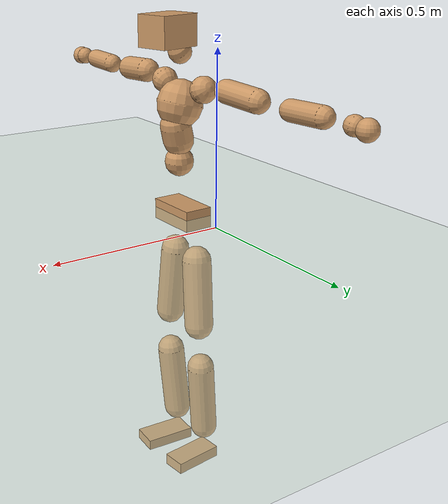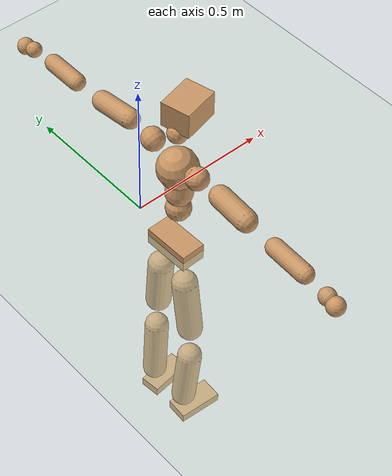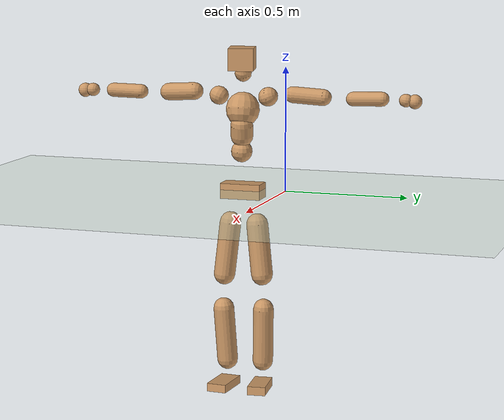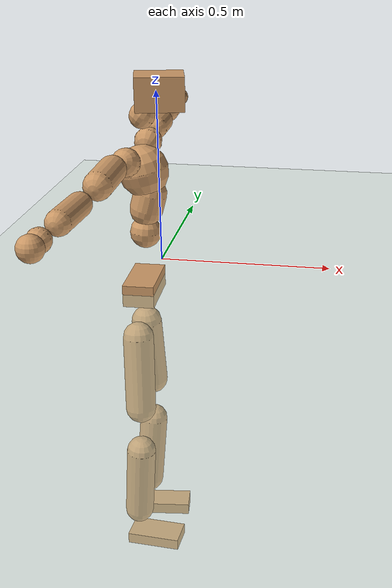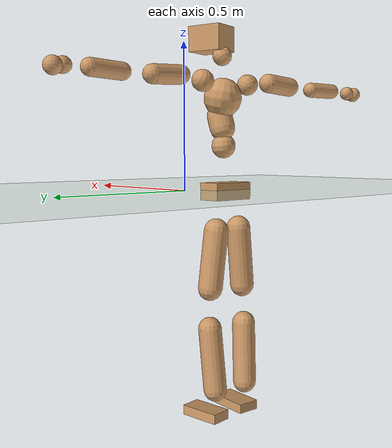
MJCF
<mujoco model="humanoid">
  <compiler coordinate="local" angle="radian"/>
  <default>
    <joint damping="0.0" armature="0.01" stiffness="0.0" limited="true"/>
    <geom conaffinity="1" condim="3" contype="7" margin="0.001" rgba="0.8 0.6 .4 1"/>
  </default>
  <asset>
    <texture type="skybox" builtin="gradient" rgb1=".4 .5 .6" rgb2="0 0 0" width="100" height="100"/>
    <texture builtin="flat" height="1278" mark="cross" markrgb="1 1 1" name="texgeom" random="0.01" rgb1="0.8 0.6 0.4" rgb2="0.8 0.6 0.4" type="cube" width="127"/>
    <texture builtin="checker" height="100" name="texplane" rgb1="0 0 0" rgb2="0.8 0.8 0.8" type="2d" width="100"/>
    <material name="MatPlane" reflectance="0.5" shininess="1" specular="1" texrepeat="60 60" texture="texplane"/>
    <material name="geom" texture="texgeom" texuniform="true"/>
  </asset>
  <worldbody>
    <light cutoff="100" diffuse="1 1 1" dir="-0 0 -1.3" directional="true" exponent="1" pos="0 0 1.3" specular=".1 .1 .1"/>
    <geom conaffinity="1" condim="3" name="floor" pos="0 0 0" rgba="0.8 0.9 0.8 1" size="100 100 .2" type="plane" material="MatPlane"/>
    <body name="Pelvis" pos="-0.0021 -0.1832 0.0037">
      <freejoint name="Pelvis"/>
      <geom type="box" contype="1" conaffinity="1" density="5359.374996" pos="-0.0064 -0.0002 -0.0107" size="0.0432 0.0829 0.0309" quat="0.9999 0.0000 0.0000 0.0121" name="Pelvis"/>
      <body name="L_Hip" pos="-0.0215 0.0494 -0.0761">
        <joint name="L_Hip_x" type="hinge" pos="0 0 0" axis="1 0 0" stiffness="1600" damping="160" armature="0.02" range="-180.0000 180.0000"/>
        <joint name="L_Hip_y" type="hinge" pos="0 0 0" axis="0 1 0" stiffness="1600" damping="160" armature="0.02" range="-180.0000 180.0000"/>
        <joint name="L_Hip_z" type="hinge" pos="0 0 0" axis="0 0 1" stiffness="1600" damping="160" armature="0.02" range="-180.0000 180.0000"/>
        <geom type="capsule" contype="1" conaffinity="1" density="2040.816327" size="0.0439" fromto="0.0024 0.0080 -0.0735 0.0092 0.0306 -0.2801" name="L_Hip"/>
        <body name="L_Knee" pos="0.0116 0.0387 -0.3536">
          <joint name="L_Knee_x" type="hinge" pos="0 0 0" axis="1 0 0" stiffness="1600" damping="160" armature="0.02" range="-180.0000 180.0000"/>
          <joint name="L_Knee_y" type="hinge" pos="0 0 0" axis="0 1 0" stiffness="1600" damping="160" armature="0.02" range="-180.0000 180.0000"/>
          <joint name="L_Knee_z" type="hinge" pos="0 0 0" axis="0 0 1" stiffness="1600" damping="160" armature="0.02" range="-180.0000 180.0000"/>
          <geom type="capsule" contype="1" conaffinity="1" density="1234.567901" size="0.0416" fromto="-0.0060 -0.0026 -0.0713 -0.0247 -0.0108 -0.2950" name="L_Knee"/>
          <body name="L_Ankle" pos="-0.0307 -0.0134 -0.3663">
            <joint name="L_Ankle_x" type="hinge" pos="0 0 0" axis="1 0 0" stiffness="1600" damping="160" armature="0.02" range="-180.0000 180.0000"/>
            <joint name="L_Ankle_y" type="hinge" pos="0 0 0" axis="0 1 0" stiffness="1600" damping="160" armature="0.02" range="-180.0000 180.0000"/>
            <joint name="L_Ankle_z" type="hinge" pos="0 0 0" axis="0 0 1" stiffness="1600" damping="160" armature="0.02" range="-180.0000 180.0000"/>
            <geom type="box" contype="1" conaffinity="1" density="1000.00001" pos="0.0549 0.0061 -0.0250" size="0.0769 0.0366 0.0177" quat="0.9985 0.0000 0.0000 0.0553" name="L_Ankle"/>
            <body name="L_Toe" pos="0.1098 0.0122 -0.05">
              <joint name="L_Toe_x" type="hinge" pos="0 0 0" axis="1 0 0" stiffness="1000" damping="100" armature="0.02" range="-180.0000 180.0000"/>
              <joint name="L_Toe_y" type="hinge" pos="0 0 0" axis="0 1 0" stiffness="1000" damping="100" armature="0.02" range="-180.0000 180.0000"/>
              <joint name="L_Toe_z" type="hinge" pos="0 0 0" axis="0 0 1" stiffness="1000" damping="100" armature="0.02" range="-180.0000 180.0000"/>
              <geom type="box" contype="1" conaffinity="1" density="9123574.545769" pos="0.0000 0.0000 0.0259" size="0.0008 0.0019 0.0009" quat="0.9980 0.0000 0.0000 0.0631" name="L_Toe"/>
            </body>
          </body>
        </body>
      </body>
      <body name="R_Hip" pos="-0.0174 -0.0479 -0.0737">
        <joint name="R_Hip_x" type="hinge" pos="0 0 0" axis="1 0 0" stiffness="1600" damping="160" armature="0.02" range="-180.0000 180.0000"/>
        <joint name="R_Hip_y" type="hinge" pos="0 0 0" axis="0 1 0" stiffness="1600" damping="160" armature="0.02" range="-180.0000 180.0000"/>
        <joint name="R_Hip_z" type="hinge" pos="0 0 0" axis="0 0 1" stiffness="1600" damping="160" armature="0.02" range="-180.0000 180.0000"/>
        <geom type="capsule" contype="1" conaffinity="1" density="2040.816327" size="0.0434" fromto="0.0016 -0.0083 -0.0729 0.0065 -0.0328 -0.2900" name="R_Hip"/>
        <body name="R_Knee" pos="0.0082 -0.0411 -0.363">
          <joint name="R_Knee_x" type="hinge" pos="0 0 0" axis="1 0 0" stiffness="1600" damping="160" armature="0.02" range="-180.0000 180.0000"/>
          <joint name="R_Knee_y" type="hinge" pos="0 0 0" axis="0 1 0" stiffness="1600" damping="160" armature="0.02" range="-180.0000 180.0000"/>
          <joint name="R_Knee_z" type="hinge" pos="0 0 0" axis="0 0 1" stiffness="1600" damping="160" armature="0.02" range="-180.0000 180.0000"/>
          <geom type="capsule" contype="1" conaffinity="1" density="1234.567901" size="0.0423" fromto="-0.0054 0.0033 -0.0720 -0.0220 0.0136 -0.2925" name="R_Knee"/>
          <body name="R_Ankle" pos="-0.0274 0.0169 -0.3645">
            <joint name="R_Ankle_x" type="hinge" pos="0 0 0" axis="1 0 0" stiffness="1600" damping="160" armature="0.02" range="-180.0000 180.0000"/>
            <joint name="R_Ankle_y" type="hinge" pos="0 0 0" axis="0 1 0" stiffness="1600" damping="160" armature="0.02" range="-180.0000 180.0000"/>
            <joint name="R_Ankle_z" type="hinge" pos="0 0 0" axis="0 0 1" stiffness="1600" damping="160" armature="0.02" range="-180.0000 180.0000"/>
            <geom type="box" contype="1" conaffinity="1" density="999.999974" pos="0.0558 -0.0037 -0.0209" size="0.0785 0.0408 0.0168" quat="0.9994 0.0000 0.0000 -0.0333" name="R_Ankle"/>
            <body name="R_Toe" pos="0.1117 -0.0075 -0.0417">
              <joint name="R_Toe_x" type="hinge" pos="0 0 0" axis="1 0 0" stiffness="1000" damping="100" armature="0.02" range="-180.0000 180.0000"/>
              <joint name="R_Toe_y" type="hinge" pos="0 0 0" axis="0 1 0" stiffness="1000" damping="100" armature="0.02" range="-180.0000 180.0000"/>
              <joint name="R_Toe_z" type="hinge" pos="0 0 0" axis="0 0 1" stiffness="1000" damping="100" armature="0.02" range="-180.0000 180.0000"/>
              <geom type="box" contype="1" conaffinity="1" density="9136280.498939" pos="0.0000 0.0000 0.0228" size="0.0008 0.002 0.0009" quat="0.9997 0.0000 0.0000 -0.0240" name="R_Toe"/>
            </body>
          </body>
        </body>
      </body>
      <body name="Torso" pos="0.0003 -0.0024 0.0858">
        <joint name="Torso_x" type="hinge" pos="0 0 0" axis="1 0 0" stiffness="2000" damping="200" armature="0.02" range="-180.0000 180.0000"/>
        <joint name="Torso_y" type="hinge" pos="0 0 0" axis="0 1 0" stiffness="2000" damping="200" armature="0.02" range="-180.0000 180.0000"/>
        <joint name="Torso_z" type="hinge" pos="0 0 0" axis="0 0 1" stiffness="2000" damping="200" armature="0.02" range="-180.0000 180.0000"/>
        <geom type="capsule" contype="1" conaffinity="1" density="2040.816327" size="0.0427" fromto="0.0037 0.0018 0.0633 0.0038 0.0019 0.0653" name="Torso"/>
        <body name="Spine" pos="0.0075 0.0037 0.1286">
          <joint name="Spine_x" type="hinge" pos="0 0 0" axis="1 0 0" stiffness="2000" damping="200" armature="0.02" range="-180.0000 180.0000"/>
          <joint name="Spine_y" type="hinge" pos="0 0 0" axis="0 1 0" stiffness="2000" damping="200" armature="0.02" range="-180.0000 180.0000"/>
          <joint name="Spine_z" type="hinge" pos="0 0 0" axis="0 0 1" stiffness="2000" damping="200" armature="0.02" range="-180.0000 180.0000"/>
          <geom type="capsule" contype="1" conaffinity="1" density="2040.816327" size="0.0453" fromto="0.0115 0.0033 0.0436 -0.0001 -0.0000 -0.0003" name="Spine"/>
          <body name="Chest" pos="0.0114 0.0033 0.0433">
            <joint name="Chest_x" type="hinge" pos="0 0 0" axis="1 0 0" stiffness="2000" damping="200" armature="0.02" range="-180.0000 180.0000"/>
            <joint name="Chest_y" type="hinge" pos="0 0 0" axis="0 1 0" stiffness="2000" damping="200" armature="0.02" range="-180.0000 180.0000"/>
            <joint name="Chest_z" type="hinge" pos="0 0 0" axis="0 0 1" stiffness="2000" damping="200" armature="0.02" range="-180.0000 180.0000"/>
            <geom type="capsule" contype="1" conaffinity="1" density="2040.816327" size="0.0673" fromto="-0.0162 -0.0010 0.0653 -0.0149 -0.0010 0.0600" name="Chest"/>
            <body name="Neck" pos="-0.0369 -0.0033 0.1788">
              <joint name="Neck_x" type="hinge" pos="0 0 0" axis="1 0 0" stiffness="1000" damping="100" armature="0.02" range="-180.0000 180.0000"/>
              <joint name="Neck_y" type="hinge" pos="0 0 0" axis="0 1 0" stiffness="1000" damping="100" armature="0.02" range="-180.0000 180.0000"/>
              <joint name="Neck_z" type="hinge" pos="0 0 0" axis="0 0 1" stiffness="1000" damping="100" armature="0.02" range="-180.0000 180.0000"/>
              <geom type="capsule" contype="1" conaffinity="1" density="1000" size="0.0338" fromto="0.0216 0.0044 0.0293 0.0228 0.0046 0.0309" name="Neck"/>
              <body name="Head" pos="0.0444 0.009 0.0602">
                <joint name="Head_x" type="hinge" pos="0 0 0" axis="1 0 0" stiffness="1000" damping="100" armature="0.02" range="-180.0000 180.0000"/>
                <joint name="Head_y" type="hinge" pos="0 0 0" axis="0 1 0" stiffness="1000" damping="100" armature="0.02" range="-180.0000 180.0000"/>
                <joint name="Head_z" type="hinge" pos="0 0 0" axis="0 0 1" stiffness="1000" damping="100" armature="0.02" range="-180.0000 180.0000"/>
                <geom type="box" contype="1" conaffinity="1" density="2249.99997" pos="0.0232 0.0055 0.0311" size="0.0642 0.0504 0.0444" quat="0.9932 0.0000 0.0000 0.1164" name="Head"/>
              </body>
            </body>
            <body name="L_Thorax" pos="-0.0266 0.0628 0.1002">
              <joint name="L_Thorax_x" type="hinge" pos="0 0 0" axis="1 0 0" stiffness="1000" damping="100" armature="0.02" range="-180.0000 180.0000"/>
              <joint name="L_Thorax_y" type="hinge" pos="0 0 0" axis="0 1 0" stiffness="1000" damping="100" armature="0.02" range="-180.0000 180.0000"/>
              <joint name="L_Thorax_z" type="hinge" pos="0 0 0" axis="0 0 1" stiffness="1000" damping="100" armature="0.02" range="-180.0000 180.0000"/>
              <geom type="capsule" contype="1" conaffinity="1" density="1000" size="0.0382" fromto="0.0008 0.0385 0.0151 0.0009 0.0404 0.0158" name="L_Thorax"/>
              <body name="L_Shoulder" pos="0.0017 0.0789 0.0308">
                <joint name="L_Shoulder_x" type="hinge" pos="0 0 0" axis="1 0 0" stiffness="1000" damping="100" armature="0.02" range="-720.0000 720.0000"/>
                <joint name="L_Shoulder_y" type="hinge" pos="0 0 0" axis="0 1 0" stiffness="1000" damping="100" armature="0.02" range="-720.0000 720.0000"/>
                <joint name="L_Shoulder_z" type="hinge" pos="0 0 0" axis="0 0 1" stiffness="1000" damping="100" armature="0.02" range="-720.0000 720.0000"/>
                <geom type="capsule" contype="1" conaffinity="1" density="1000" size="0.0328" fromto="-0.0045 0.0626 -0.0039 -0.0132 0.1855 -0.0114" name="L_Shoulder"/>
                <body name="L_Elbow" pos="-0.0177 0.248 -0.0153">
                  <joint name="L_Elbow_x" type="hinge" pos="0 0 0" axis="1 0 0" stiffness="1000" damping="100" armature="0.02" range="-720.0000 720.0000"/>
                  <joint name="L_Elbow_y" type="hinge" pos="0 0 0" axis="0 1 0" stiffness="1000" damping="100" armature="0.02" range="-720.0000 720.0000"/>
                  <joint name="L_Elbow_z" type="hinge" pos="0 0 0" axis="0 0 1" stiffness="1000" damping="100" armature="0.02" range="-720.0000 720.0000"/>
                  <geom type="capsule" contype="1" conaffinity="1" density="1000" size="0.0285" fromto="-0.0011 0.0585 0.0018 -0.0032 0.1740 0.0053" name="L_Elbow"/>
                  <body name="L_Wrist" pos="-0.0042 0.2325 0.0071">
                    <joint name="L_Wrist_x" type="hinge" pos="0 0 0" axis="1 0 0" stiffness="600" damping="60" armature="0.02" range="-180.0000 180.0000"/>
                    <joint name="L_Wrist_y" type="hinge" pos="0 0 0" axis="0 1 0" stiffness="600" damping="60" armature="0.02" range="-180.0000 180.0000"/>
                    <joint name="L_Wrist_z" type="hinge" pos="0 0 0" axis="0 0 1" stiffness="600" damping="60" armature="0.02" range="-180.0000 180.0000"/>
                    <geom type="capsule" contype="1" conaffinity="1" density="1000" size="0.0257" fromto="-0.0059 0.0343 -0.0043 -0.0062 0.0363 -0.0046" name="L_Wrist"/>
                    <body name="L_Hand" pos="-0.0121 0.0706 -0.0089">
                      <joint name="L_Hand_x" type="hinge" pos="0 0 0" axis="1 0 0" stiffness="600" damping="60" armature="0.02" range="-180.0000 180.0000"/>
                      <joint name="L_Hand_y" type="hinge" pos="0 0 0" axis="0 1 0" stiffness="600" damping="60" armature="0.02" range="-180.0000 180.0000"/>
                      <joint name="L_Hand_z" type="hinge" pos="0 0 0" axis="0 0 1" stiffness="600" damping="60" armature="0.02" range="-180.0000 180.0000"/>
                      <geom type="sphere" contype="1" conaffinity="1" density="1000" size="0.0282" pos="0.0000 0.0000 0.0000" name="L_Hand"/>
                    </body>
                  </body>
                </body>
              </body>
            </body>
            <body name="R_Thorax" pos="-0.0301 -0.0655 0.097">
              <joint name="R_Thorax_x" type="hinge" pos="0 0 0" axis="1 0 0" stiffness="1000" damping="100" armature="0.02" range="-180.0000 180.0000"/>
              <joint name="R_Thorax_y" type="hinge" pos="0 0 0" axis="0 1 0" stiffness="1000" damping="100" armature="0.02" range="-180.0000 180.0000"/>
              <joint name="R_Thorax_z" type="hinge" pos="0 0 0" axis="0 0 1" stiffness="1000" damping="100" armature="0.02" range="-180.0000 180.0000"/>
              <geom type="capsule" contype="1" conaffinity="1" density="1000" size="0.0374" fromto="-0.0031 -0.0410 0.0161 -0.0032 -0.0428 0.0168" name="R_Thorax"/>
              <body name="R_Shoulder" pos="-0.0063 -0.0838 0.0329">
                <joint name="R_Shoulder_x" type="hinge" pos="0 0 0" axis="1 0 0" stiffness="1000" damping="100" armature="0.02" range="-720.0000 720.0000"/>
                <joint name="R_Shoulder_y" type="hinge" pos="0 0 0" axis="0 1 0" stiffness="1000" damping="100" armature="0.02" range="-720.0000 720.0000"/>
                <joint name="R_Shoulder_z" type="hinge" pos="0 0 0" axis="0 0 1" stiffness="1000" damping="100" armature="0.02" range="-720.0000 720.0000"/>
                <geom type="capsule" contype="1" conaffinity="1" density="1000" size="0.0352" fromto="-0.0020 -0.0650 -0.0040 -0.0056 -0.1773 -0.0110" name="R_Shoulder"/>
                <body name="R_Elbow" pos="-0.0076 -0.2423 -0.015">
                  <joint name="R_Elbow_x" type="hinge" pos="0 0 0" axis="1 0 0" stiffness="1000" damping="100" armature="0.02" range="-720.0000 720.0000"/>
                  <joint name="R_Elbow_y" type="hinge" pos="0 0 0" axis="0 1 0" stiffness="1000" damping="100" armature="0.02" range="-720.0000 720.0000"/>
                  <joint name="R_Elbow_z" type="hinge" pos="0 0 0" axis="0 0 1" stiffness="1000" damping="100" armature="0.02" range="-720.0000 720.0000"/>
                  <geom type="capsule" contype="1" conaffinity="1" density="1000" size="0.0287" fromto="-0.0027 -0.0587 0.0005 -0.0086 -0.1834 0.0016" name="R_Elbow"/>
                  <body name="R_Wrist" pos="-0.0113 -0.2421 0.0021">
                    <joint name="R_Wrist_x" type="hinge" pos="0 0 0" axis="1 0 0" stiffness="600" damping="60" armature="0.02" range="-180.0000 180.0000"/>
                    <joint name="R_Wrist_y" type="hinge" pos="0 0 0" axis="0 1 0" stiffness="600" damping="60" armature="0.02" range="-180.0000 180.0000"/>
                    <joint name="R_Wrist_z" type="hinge" pos="0 0 0" axis="0 0 1" stiffness="600" damping="60" armature="0.02" range="-180.0000 180.0000"/>
                    <geom type="capsule" contype="1" conaffinity="1" density="1000" size="0.0268" fromto="-0.0045 -0.0356 -0.0033 -0.0047 -0.0376 -0.0034" name="R_Wrist"/>
                    <body name="R_Hand" pos="-0.0092 -0.0732 -0.0067">
                      <joint name="R_Hand_x" type="hinge" pos="0 0 0" axis="1 0 0" stiffness="600" damping="60" armature="0.02" range="-180.0000 180.0000"/>
                      <joint name="R_Hand_y" type="hinge" pos="0 0 0" axis="0 1 0" stiffness="600" damping="60" armature="0.02" range="-180.0000 180.0000"/>
                      <joint name="R_Hand_z" type="hinge" pos="0 0 0" axis="0 0 1" stiffness="600" damping="60" armature="0.02" range="-180.0000 180.0000"/>
                      <geom type="sphere" contype="1" conaffinity="1" density="1000" size="0.0290" pos="0.0000 0.0000 0.0000" name="R_Hand"/>
                    </body>
                  </body>
                </body>
              </body>
            </body>
          </body>
        </body>
      </body>
    </body>
  </worldbody>
  <actuator>
    <motor name="L_Hip_x" joint="L_Hip_x" gear="500"/>
    <motor name="L_Hip_y" joint="L_Hip_y" gear="500"/>
    <motor name="L_Hip_z" joint="L_Hip_z" gear="500"/>
    <motor name="L_Knee_x" joint="L_Knee_x" gear="500"/>
    <motor name="L_Knee_y" joint="L_Knee_y" gear="500"/>
    <motor name="L_Knee_z" joint="L_Knee_z" gear="500"/>
    <motor name="L_Ankle_x" joint="L_Ankle_x" gear="500"/>
    <motor name="L_Ankle_y" joint="L_Ankle_y" gear="500"/>
    <motor name="L_Ankle_z" joint="L_Ankle_z" gear="500"/>
    <motor name="L_Toe_x" joint="L_Toe_x" gear="500"/>
    <motor name="L_Toe_y" joint="L_Toe_y" gear="500"/>
    <motor name="L_Toe_z" joint="L_Toe_z" gear="500"/>
    <motor name="R_Hip_x" joint="R_Hip_x" gear="500"/>
    <motor name="R_Hip_y" joint="R_Hip_y" gear="500"/>
    <motor name="R_Hip_z" joint="R_Hip_z" gear="500"/>
    <motor name="R_Knee_x" joint="R_Knee_x" gear="500"/>
    <motor name="R_Knee_y" joint="R_Knee_y" gear="500"/>
    <motor name="R_Knee_z" joint="R_Knee_z" gear="500"/>
    <motor name="R_Ankle_x" joint="R_Ankle_x" gear="500"/>
    <motor name="R_Ankle_y" joint="R_Ankle_y" gear="500"/>
    <motor name="R_Ankle_z" joint="R_Ankle_z" gear="500"/>
    <motor name="R_Toe_x" joint="R_Toe_x" gear="500"/>
    <motor name="R_Toe_y" joint="R_Toe_y" gear="500"/>
    <motor name="R_Toe_z" joint="R_Toe_z" gear="500"/>
    <motor name="Torso_x" joint="Torso_x" gear="500"/>
    <motor name="Torso_y" joint="Torso_y" gear="500"/>
    <motor name="Torso_z" joint="Torso_z" gear="500"/>
    <motor name="Spine_x" joint="Spine_x" gear="500"/>
    <motor name="Spine_y" joint="Spine_y" gear="500"/>
    <motor name="Spine_z" joint="Spine_z" gear="500"/>
    <motor name="Chest_x" joint="Chest_x" gear="500"/>
    <motor name="Chest_y" joint="Chest_y" gear="500"/>
    <motor name="Chest_z" joint="Chest_z" gear="500"/>
    <motor name="Neck_x" joint="Neck_x" gear="500"/>
    <motor name="Neck_y" joint="Neck_y" gear="500"/>
    <motor name="Neck_z" joint="Neck_z" gear="500"/>
    <motor name="Head_x" joint="Head_x" gear="500"/>
    <motor name="Head_y" joint="Head_y" gear="500"/>
    <motor name="Head_z" joint="Head_z" gear="500"/>
    <motor name="L_Thorax_x" joint="L_Thorax_x" gear="500"/>
    <motor name="L_Thorax_y" joint="L_Thorax_y" gear="500"/>
    <motor name="L_Thorax_z" joint="L_Thorax_z" gear="500"/>
    <motor name="L_Shoulder_x" joint="L_Shoulder_x" gear="500"/>
    <motor name="L_Shoulder_y" joint="L_Shoulder_y" gear="500"/>
    <motor name="L_Shoulder_z" joint="L_Shoulder_z" gear="500"/>
    <motor name="L_Elbow_x" joint="L_Elbow_x" gear="500"/>
    <motor name="L_Elbow_y" joint="L_Elbow_y" gear="500"/>
    <motor name="L_Elbow_z" joint="L_Elbow_z" gear="500"/>
    <motor name="L_Wrist_x" joint="L_Wrist_x" gear="500"/>
    <motor name="L_Wrist_y" joint="L_Wrist_y" gear="500"/>
    <motor name="L_Wrist_z" joint="L_Wrist_z" gear="500"/>
    <motor name="L_Hand_x" joint="L_Hand_x" gear="500"/>
    <motor name="L_Hand_y" joint="L_Hand_y" gear="500"/>
    <motor name="L_Hand_z" joint="L_Hand_z" gear="500"/>
    <motor name="R_Thorax_x" joint="R_Thorax_x" gear="500"/>
    <motor name="R_Thorax_y" joint="R_Thorax_y" gear="500"/>
    <motor name="R_Thorax_z" joint="R_Thorax_z" gear="500"/>
    <motor name="R_Shoulder_x" joint="R_Shoulder_x" gear="500"/>
    <motor name="R_Shoulder_y" joint="R_Shoulder_y" gear="500"/>
    <motor name="R_Shoulder_z" joint="R_Shoulder_z" gear="500"/>
    <motor name="R_Elbow_x" joint="R_Elbow_x" gear="500"/>
    <motor name="R_Elbow_y" joint="R_Elbow_y" gear="500"/>
    <motor name="R_Elbow_z" joint="R_Elbow_z" gear="500"/>
    <motor name="R_Wrist_x" joint="R_Wrist_x" gear="500"/>
    <motor name="R_Wrist_y" joint="R_Wrist_y" gear="500"/>
    <motor name="R_Wrist_z" joint="R_Wrist_z" gear="500"/>
    <motor name="R_Hand_x" joint="R_Hand_x" gear="500"/>
    <motor name="R_Hand_y" joint="R_Hand_y" gear="500"/>
    <motor name="R_Hand_z" joint="R_Hand_z" gear="500"/>
  </actuator>
  <contact>
    <exclude body1="Torso" body2="Chest"/>
    <exclude body1="Head" body2="Chest"/>
    <exclude body1="R_Knee" body2="R_Toe"/>
    <exclude body1="R_Knee" body2="L_Ankle"/>
    <exclude body1="R_Knee" body2="L_Toe"/>
    <exclude body1="L_Knee" body2="L_Toe"/>
    <exclude body1="L_Knee" body2="R_Ankle"/>
    <exclude body1="L_Knee" body2="R_Toe"/>
    <exclude body1="L_Shoulder" body2="Chest"/>
    <exclude body1="R_Shoulder" body2="Chest"/>
  </contact>
  <sensor/>
  <size njmax="700" nconmax="700"/>
</mujoco>
